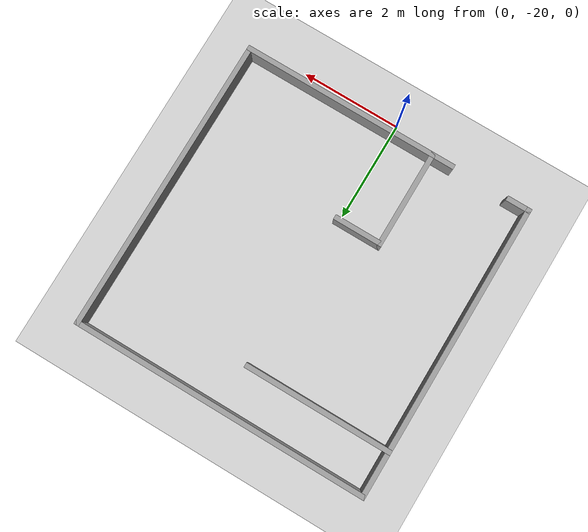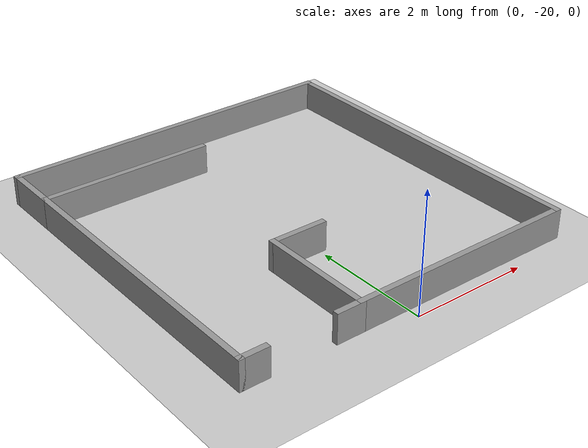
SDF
<sdf version="1.6">
 <world name="default">
  <model name="ground_plane">
   <static>1</static>
   <link name="link">
    <collision name="collision">
     <geometry><plane><normal>0 0 1</normal><size>80 80</size></plane></geometry>
     <surface>
      <contact><collide_bitmask>65535</collide_bitmask></contact>
      <friction><ode><mu>100</mu><mu2>50</mu2></ode></friction>
     </surface>
     <max_contacts>15</max_contacts>
    </collision>
    <visual name="visual">
     <cast_shadows>0</cast_shadows>
     <geometry><plane><normal>0 0 1</normal><size>80 80</size></plane></geometry>
     <material>
      <script><uri>file://media/materials/scripts/gazebo.material</uri><name>Gazebo/Grey</name></script>
     </material>
    </visual>
   </link>
  </model>
  <model name="shape5">
   <pose>0.0999985 -16.8 0 0 -0 0</pose>
   <link name="Wall_10">
    <collision name="Wall_10_Collision">
     <geometry><box><size>6 0.1 0.5</size></box></geometry>
     <pose>0 0 0.25 0 -0 0</pose>
    </collision>
    <visual name="Wall_10_Visual">
     <pose>0 0 0.25 0 -0 0</pose>
     <geometry><box><size>6 0.1 0.5</size></box></geometry>
     <material>
      <script><uri>file://media/materials/scripts/gazebo.material</uri><name>Gazebo/Grey</name></script>
      <ambient>1 1 1 1</ambient>
     </material>
     <meta><layer>0</layer></meta>
    </visual>
    <pose>-0 2.95 0 0 -0 0</pose>
   </link>
   <link name="Wall_11">
    <collision name="Wall_11_Collision">
     <geometry><box><size>6 0.1 0.5</size></box></geometry>
     <pose>0 0 0.25 0 -0 0</pose>
    </collision>
    <visual name="Wall_11_Visual">
     <pose>0 0 0.25 0 -0 0</pose>
     <geometry><box><size>6 0.1 0.5</size></box></geometry>
     <material>
      <script><uri>file://media/materials/scripts/gazebo.material</uri><name>Gazebo/Grey</name></script>
      <ambient>1 1 1 1</ambient>
     </material>
     <meta><layer>0</layer></meta>
    </visual>
    <pose>2.95 0 0 0 -0 -1.5708</pose>
   </link>
   <link name="Wall_12">
    <collision name="Wall_12_Collision">
     <geometry><box><size>4 0.1 0.5</size></box></geometry>
     <pose>0 0 0.25 0 -0 0</pose>
    </collision>
    <visual name="Wall_12_Visual">
     <pose>0 0 0.25 0 -0 0</pose>
     <geometry><box><size>4 0.1 0.5</size></box></geometry>
     <material>
      <script><uri>file://media/materials/scripts/gazebo.material</uri><name>Gazebo/Grey</name></script>
      <ambient>1 1 1 1</ambient>
     </material>
     <meta><layer>0</layer></meta>
    </visual>
    <pose>1 -2.95 0 0 -0 3.14159</pose>
   </link>
   <link name="Wall_13">
    <collision name="Wall_13_Collision">
     <geometry><box><size>2 0.1 0.5</size></box></geometry>
     <pose>0 0 0.25 0 -0 0</pose>
    </collision>
    <visual name="Wall_13_Visual">
     <pose>0 0 0.25 0 -0 0</pose>
     <geometry><box><size>2 0.1 0.5</size></box></geometry>
     <material>
      <script><uri>file://media/materials/scripts/gazebo.material</uri><name>Gazebo/Grey</name></script>
      <ambient>1 1 1 1</ambient>
     </material>
     <meta><layer>0</layer></meta>
    </visual>
    <pose>-0.95 -2 0 0 -0 1.5708</pose>
   </link>
   <link name="Wall_14">
    <collision name="Wall_14_Collision">
     <geometry><box><size>1.00029 0.1 0.5</size></box></geometry>
     <pose>0 0 0.25 0 -0 0</pose>
    </collision>
    <visual name="Wall_14_Visual">
     <pose>0 0 0.25 0 -0 0</pose>
     <geometry><box><size>1.00029 0.1 0.5</size></box></geometry>
     <material>
      <script><uri>file://media/materials/scripts/gazebo.material</uri><name>Gazebo/Grey</name></script>
      <ambient>1 1 1 1</ambient>
     </material>
     <meta><layer>0</layer></meta>
    </visual>
    <pose>-0.5 -1.05 0 0 -0 0</pose>
   </link>
   <link name="Wall_18">
    <collision name="Wall_18_Collision">
     <geometry><box><size>1 0.1 0.5</size></box></geometry>
     <pose>0 0 0.25 0 -0 0</pose>
    </collision>
    <visual name="Wall_18_Visual">
     <pose>0 0 0.25 0 -0 0</pose>
     <geometry><box><size>1 0.1 0.5</size></box></geometry>
     <material>
      <script><uri>file://media/materials/scripts/gazebo.material</uri><name>Gazebo/Grey</name></script>
      <ambient>1 1 1 1</ambient>
     </material>
     <meta><layer>0</layer></meta>
    </visual>
    <pose>-2.95 2.5 0 0 -0 -1.5708</pose>
   </link>
   <link name="Wall_19">
    <collision name="Wall_19_Collision">
     <geometry><box><size>3 0.1 0.5</size></box></geometry>
     <pose>0 0 0.25 0 -0 0</pose>
    </collision>
    <visual name="Wall_19_Visual">
     <pose>0 0 0.25 0 -0 0</pose>
     <geometry><box><size>3 0.1 0.5</size></box></geometry>
     <material>
      <script><uri>file://media/materials/scripts/gazebo.material</uri><name>Gazebo/Grey</name></script>
      <ambient>1 1 1 1</ambient>
     </material>
     <meta><layer>0</layer></meta>
    </visual>
    <pose>-1.5 2.05 0 0 -0 0</pose>
   </link>
   <link name="Wall_21">
    <collision name="Wall_21_Collision">
     <geometry><box><size>5.1 0.1 0.5</size></box></geometry>
     <pose>0 0 0.25 0 -0 0</pose>
    </collision>
    <visual name="Wall_21_Visual">
     <pose>0 0 0.25 0 -0 0</pose>
     <geometry><box><size>5.1 0.1 0.5</size></box></geometry>
     <material>
      <script><uri>file://media/materials/scripts/gazebo.material</uri><name>Gazebo/Grey</name></script>
      <ambient>1 1 1 1</ambient>
     </material>
     <meta><layer>0</layer></meta>
    </visual>
    <pose>-2.95 -0.45 0 0 -0 -1.5708</pose>
   </link>
   <link name="Wall_22">
    <collision name="Wall_22_Collision">
     <geometry><box><size>0.5 0.1 0.5</size></box></geometry>
     <pose>0 0 0.25 0 -0 0</pose>
    </collision>
    <visual name="Wall_22_Visual">
     <pose>0 0 0.25 0 -0 0</pose>
     <geometry><box><size>0.5 0.1 0.5</size></box></geometry>
     <material>
      <script><uri>file://media/materials/scripts/gazebo.material</uri><name>Gazebo/Grey</name></script>
      <ambient>1 1 1 1</ambient>
     </material>
     <meta><layer>0</layer></meta>
    </visual>
    <pose>-2.75 -2.95 0 0 -0 0</pose>
   </link>
   <link name="Wall_24">
    <collision name="Wall_24_Collision">
     <geometry><box><size>0.5 0.1 0.5</size></box></geometry>
     <pose>0 0 0.25 0 -0 0</pose>
    </collision>
    <visual name="Wall_24_Visual">
     <pose>0 0 0.25 0 -0 0</pose>
     <geometry><box><size>0.5 0.1 0.5</size></box></geometry>
     <material>
      <script><uri>file://media/materials/scripts/gazebo.material</uri><name>Gazebo/Grey</name></script>
      <ambient>1 1 1 1</ambient>
     </material>
     <meta><layer>0</layer></meta>
    </visual>
    <pose>-1.15 -2.95 0 0 -0 3.14159</pose>
   </link>
   <static>1</static>
  </model>
 </world>
</sdf>
